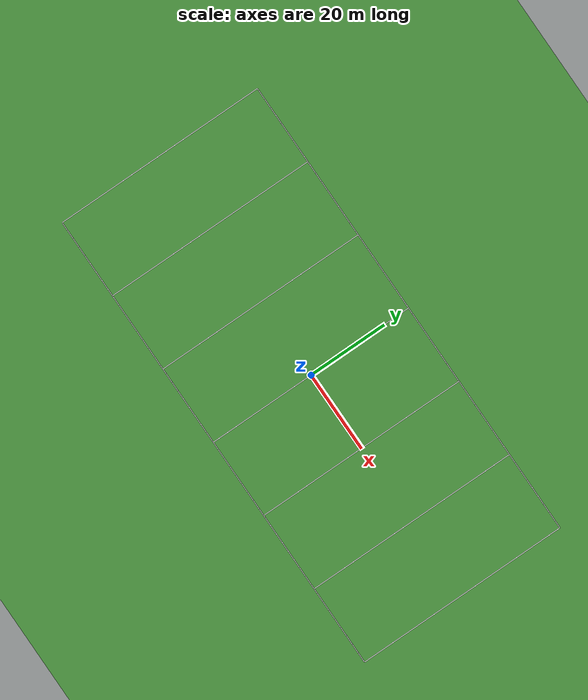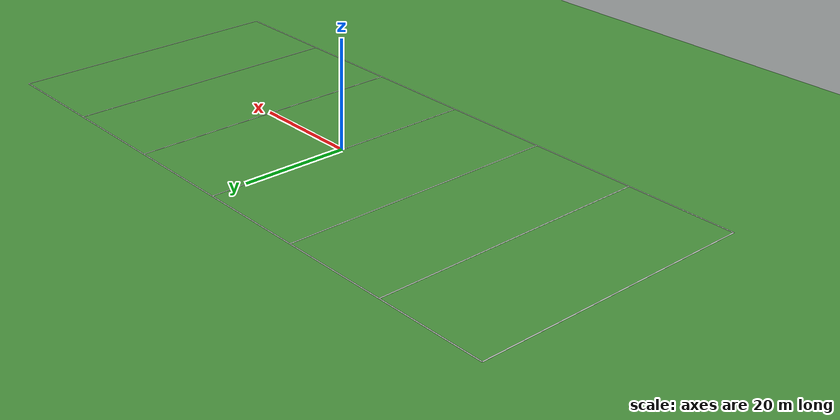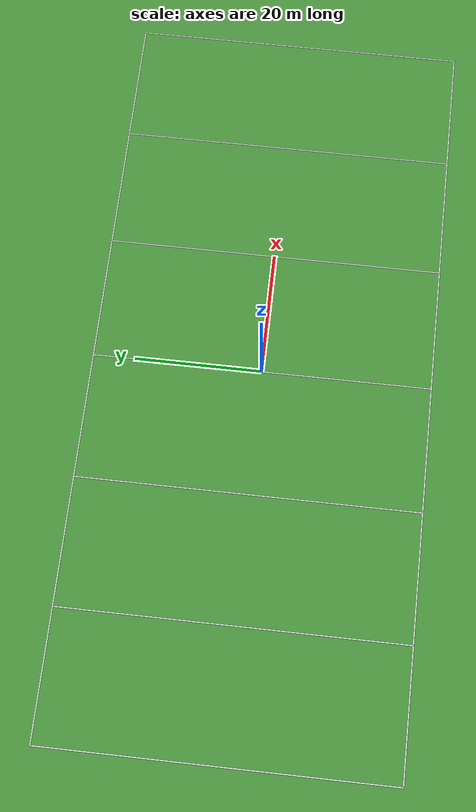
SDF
<sdf version="1.5">
 <world name="empty">
  <include><uri>model://sun</uri></include>
  <model name="grass_field">
   <static>true</static>
   <link name="link">
    <collision name="collision">
     <geometry><plane><normal>0 0 1</normal><size>120 53.3</size></plane></geometry>
     <surface><friction><ode><mu>100</mu><mu2>50</mu2></ode></friction></surface>
    </collision>
    <visual name="visual">
     <cast_shadows>false</cast_shadows>
     <geometry><plane><normal>0 0 1</normal><size>120 53.3</size></plane></geometry>
     <material>
      <script><uri>file://media/materials/scripts/gazebo.material</uri><name>Gazebo/Grass</name></script>
     </material>
    </visual>
   </link>
  </model>
  <model name="yard_lines">
   <static>true</static>
   <link name="link">
    <visual name="sideline_1">
     <pose>0 26.65 0.01 0 0 0</pose>
     <geometry><box><size>120 0.2 0.01</size></box></geometry>
     <material>
      <script><uri>file://media/materials/scripts/gazebo.material</uri><name>Gazebo/White</name></script>
     </material>
    </visual>
    <visual name="sideline_2">
     <pose>0 -26.65 0.01 0 0 0</pose>
     <geometry><box><size>120 0.2 0.01</size></box></geometry>
     <material>
      <script><uri>file://media/materials/scripts/gazebo.material</uri><name>Gazebo/White</name></script>
     </material>
    </visual>
    <visual name="yard_0">
     <pose>-60 0 0.01 0 0 0</pose>
     <geometry><box><size>0.2 53.3 0.01</size></box></geometry>
     <material>
      <script><uri>file://media/materials/scripts/gazebo.material</uri><name>Gazebo/White</name></script>
     </material>
    </visual>
    <visual name="yard_10">
     <pose>-40 0 0.01 0 0 0</pose>
     <geometry><box><size>0.2 53.3 0.01</size></box></geometry>
     <material>
      <script><uri>file://media/materials/scripts/gazebo.material</uri><name>Gazebo/White</name></script>
     </material>
    </visual>
    <visual name="yard_20">
     <pose>-20 0 0.01 0 0 0</pose>
     <geometry><box><size>0.2 53.3 0.01</size></box></geometry>
     <material>
      <script><uri>file://media/materials/scripts/gazebo.material</uri><name>Gazebo/White</name></script>
     </material>
    </visual>
    <visual name="yard_30">
     <pose>0 0 0.01 0 0 0</pose>
     <geometry><box><size>0.2 53.3 0.01</size></box></geometry>
     <material>
      <script><uri>file://media/materials/scripts/gazebo.material</uri><name>Gazebo/White</name></script>
     </material>
    </visual>
    <visual name="yard_40">
     <pose>20 0 0.01 0 0 0</pose>
     <geometry><box><size>0.2 53.3 0.01</size></box></geometry>
     <material>
      <script><uri>file://media/materials/scripts/gazebo.material</uri><name>Gazebo/White</name></script>
     </material>
    </visual>
    <visual name="yard_50">
     <pose>40 0 0.01 0 0 0</pose>
     <geometry><box><size>0.2 53.3 0.01</size></box></geometry>
     <material>
      <script><uri>file://media/materials/scripts/gazebo.material</uri><name>Gazebo/White</name></script>
     </material>
    </visual>
    <visual name="yard_60">
     <pose>60 0 0.01 0 0 0</pose>
     <geometry><box><size>0.2 53.3 0.01</size></box></geometry>
     <material>
      <script><uri>file://media/materials/scripts/gazebo.material</uri><name>Gazebo/White</name></script>
     </material>
    </visual>
   </link>
  </model>
  <physics name="default_physics" default="0" type="ode">
   <gravity>0 0 -9.8066</gravity>
   <ode>
    <solver>
     <type>quick</type>
     <iters>10</iters>
     <sor>1.3</sor>
     <use_dynamic_moi_rescaling>0</use_dynamic_moi_rescaling>
    </solver>
    <constraints>
     <cfm>0</cfm>
     <erp>0.2</erp>
     <contact_max_correcting_vel>100</contact_max_correcting_vel>
     <contact_surface_layer>0.001</contact_surface_layer>
    </constraints>
   </ode>
   <max_step_size>0.004</max_step_size>
   <real_time_factor>1</real_time_factor>
   <real_time_update_rate>250</real_time_update_rate>
   <magnetic_field>6.0e-6 2.3e-5 -4.2e-5</magnetic_field>
  </physics>
 </world>
</sdf>
